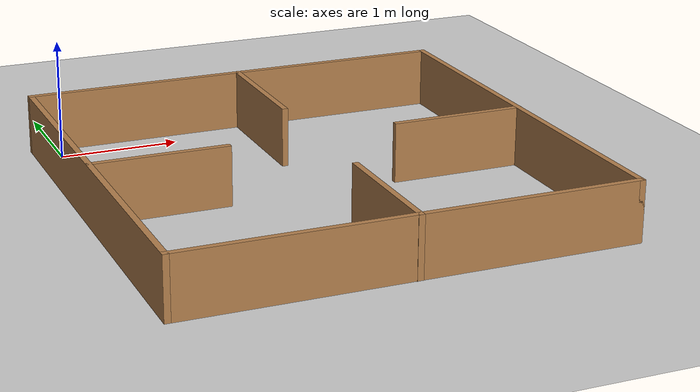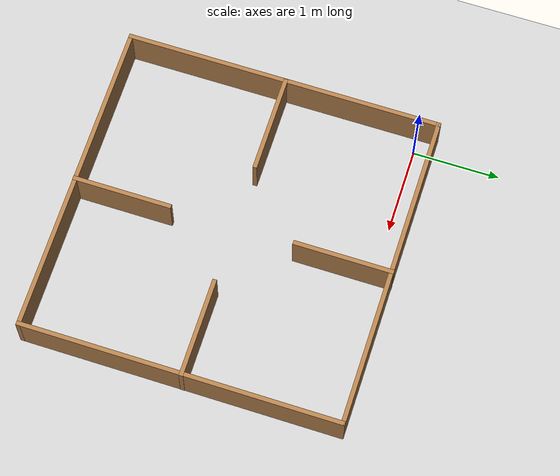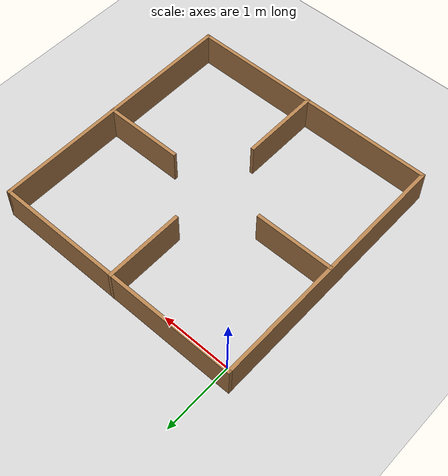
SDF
<sdf version="1.6">
 <world name="default">
  <light name="sun" type="directional">
   <pose>0 0 10 0 -0 0</pose>
   <diffuse>0.8 0.8 0.8 1</diffuse>
   <specular>0.2 0.2 0.2 1</specular>
   <attenuation>
    <range>1000</range>
    <constant>0.9</constant>
    <linear>0.01</linear>
    <quadratic>0.001</quadratic>
   </attenuation>
   <direction>-0.5 0.1 -0.9</direction>
  </light>
  <model name="ground_plane">
   <static>1</static>
   <link name="link">
    <collision name="collision">
     <geometry><plane><normal>0 0 1</normal><size>100 100</size></plane></geometry>
     <surface>
      <contact><collide_bitmask>65535</collide_bitmask></contact>
      <friction><ode><mu>100</mu><mu2>50</mu2></ode></friction>
     </surface>
    </collision>
    <visual name="visual">
     <cast_shadows>0</cast_shadows>
     <geometry><plane><normal>0 0 1</normal><size>100 100</size></plane></geometry>
     <material>
      <script><uri>file://media/materials/scripts/gazebo.material</uri><name>Gazebo/Grey</name></script>
     </material>
    </visual>
   </link>
  </model>
  <gravity>0 0 -9.8</gravity>
  <magnetic_field>6e-06 2.3e-05 -4.2e-05</magnetic_field>
  <atmosphere type="adiabatic"/>
  <physics name="default_physics" default="0" type="ode">
   <max_step_size>0.001</max_step_size>
   <real_time_factor>1</real_time_factor>
   <real_time_update_rate>1000</real_time_update_rate>
  </physics>
  <scene><ambient>0.4 0.4 0.4 1</ambient><background>0.7 0.7 0.7 1</background><shadows>1</shadows></scene>
  <audio><device>default</device></audio>
  <spherical_coordinates>
   <surface_model>EARTH_WGS84</surface_model>
   <latitude_deg>0</latitude_deg>
   <longitude_deg>0</longitude_deg>
   <elevation>0</elevation>
   <heading_deg>0</heading_deg>
  </spherical_coordinates>
  <model name="2024world">
   <pose>1.6323 -1.62495 0 0 -0 0</pose>
   <link name="Wall_13">
    <collision name="Wall_13_Collision">
     <geometry><box><size>3.7 0.05 0.5</size></box></geometry>
     <pose>0 0 0.25 0 -0 0</pose>
    </collision>
    <visual name="Wall_13_Visual">
     <pose>0 0 0.25 0 -0 0</pose>
     <geometry><box><size>3.7 0.05 0.5</size></box></geometry>
     <material>
      <script><uri>file://media/materials/scripts/gazebo.material</uri><name>Gazebo/Wood</name></script>
      <ambient>1 1 1 1</ambient>
     </material>
     <meta><layer>0</layer></meta>
    </visual>
    <pose>1.824 0.000555 0 0 -0 -1.5708</pose>
   </link>
   <link name="Wall_15">
    <collision name="Wall_15_Collision">
     <geometry><box><size>3.7 0.05 0.5</size></box></geometry>
     <pose>0 0 0.25 0 -0 0</pose>
    </collision>
    <visual name="Wall_15_Visual">
     <pose>0 0 0.25 0 -0 0</pose>
     <geometry><box><size>3.7 0.05 0.5</size></box></geometry>
     <material>
      <script><uri>file://media/materials/scripts/gazebo.material</uri><name>Gazebo/Wood</name></script>
      <ambient>1 1 1 1</ambient>
     </material>
     <meta><layer>0</layer></meta>
    </visual>
    <pose>-0.001 -1.82444 0 0 -0 3.14159</pose>
   </link>
   <link name="Wall_19">
    <collision name="Wall_19_Collision">
     <geometry><box><size>3.7 0.05 0.5</size></box></geometry>
     <pose>0 0 0.25 0 -0 0</pose>
    </collision>
    <visual name="Wall_19_Visual">
     <pose>0 0 0.25 0 -0 0</pose>
     <geometry><box><size>3.7 0.05 0.5</size></box></geometry>
     <material>
      <script><uri>file://media/materials/scripts/gazebo.material</uri><name>Gazebo/Wood</name></script>
      <ambient>1 1 1 1</ambient>
     </material>
     <meta><layer>0</layer></meta>
    </visual>
    <pose>-1.826 0.000555 0 0 -0 -1.5708</pose>
   </link>
   <link name="Wall_21">
    <collision name="Wall_21_Collision">
     <geometry><box><size>1.15 0.05 0.5</size></box></geometry>
     <pose>0 0 0.25 0 -0 0</pose>
    </collision>
    <visual name="Wall_21_Visual">
     <pose>0 0 0.25 0 -0 0</pose>
     <geometry><box><size>1.15 0.05 0.5</size></box></geometry>
     <material>
      <script><uri>file://media/materials/scripts/gazebo.material</uri><name>Gazebo/Wood</name></script>
      <ambient>1 1 1 1</ambient>
     </material>
     <meta><layer>0</layer></meta>
    </visual>
    <pose>-1.27 0.02634 0 0 -0 0</pose>
   </link>
   <link name="Wall_23">
    <collision name="Wall_23_Collision">
     <geometry><box><size>1.15 0.05 0.5</size></box></geometry>
     <pose>0 0 0.25 0 -0 0</pose>
    </collision>
    <visual name="Wall_23_Visual">
     <pose>0 0 0.25 0 -0 0</pose>
     <geometry><box><size>1.15 0.05 0.5</size></box></geometry>
     <material>
      <script><uri>file://media/materials/scripts/gazebo.material</uri><name>Gazebo/Wood</name></script>
      <ambient>1 1 1 1</ambient>
     </material>
     <meta><layer>0</layer></meta>
    </visual>
    <pose>1.276 0.02685 0 0 -0 3.14159</pose>
   </link>
   <link name="Wall_25">
    <collision name="Wall_25_Collision">
     <geometry><box><size>1.1499 0.05 0.5</size></box></geometry>
     <pose>0 0 0.25 0 -0 0</pose>
    </collision>
    <visual name="Wall_25_Visual">
     <pose>0 0 0.25 0 -0 0</pose>
     <geometry><box><size>1.1499 0.05 0.5</size></box></geometry>
     <material>
      <script><uri>file://media/materials/scripts/gazebo.material</uri><name>Gazebo/Wood</name></script>
      <ambient>1 1 1 1</ambient>
     </material>
     <meta><layer>0</layer></meta>
    </visual>
    <pose>0.034 -1.27744 0 0 -0 1.5708</pose>
   </link>
   <link name="Wall_27">
    <collision name="Wall_27_Collision">
     <geometry><box><size>1.14968 0.05 0.5</size></box></geometry>
     <pose>0 0 0.25 0 -0 0</pose>
    </collision>
    <visual name="Wall_27_Visual">
     <pose>0 0 0.25 0 -0 0</pose>
     <geometry><box><size>1.14968 0.05 0.5</size></box></geometry>
     <material>
      <script><uri>file://media/materials/scripts/gazebo.material</uri><name>Gazebo/Wood</name></script>
      <ambient>1 1 1 1</ambient>
     </material>
     <meta><layer>0</layer></meta>
    </visual>
    <pose>0.025 1.27755 0 0 -0 -1.5708</pose>
   </link>
   <link name="Wall_5">
    <collision name="Wall_5_Collision">
     <geometry><box><size>3.7 0.05 0.5</size></box></geometry>
     <pose>0 0 0.25 0 -0 0</pose>
    </collision>
    <visual name="Wall_5_Visual">
     <pose>0 0 0.25 0 -0 0</pose>
     <geometry><box><size>3.7 0.05 0.5</size></box></geometry>
     <material>
      <script><uri>file://media/materials/scripts/gazebo.material</uri><name>Gazebo/Wood</name></script>
      <ambient>1 1 1 1</ambient>
     </material>
     <meta><layer>0</layer></meta>
    </visual>
    <pose>-0.001 1.82556 0 0 -0 3.14159</pose>
   </link>
   <static>1</static>
  </model>
 </world>
</sdf>
